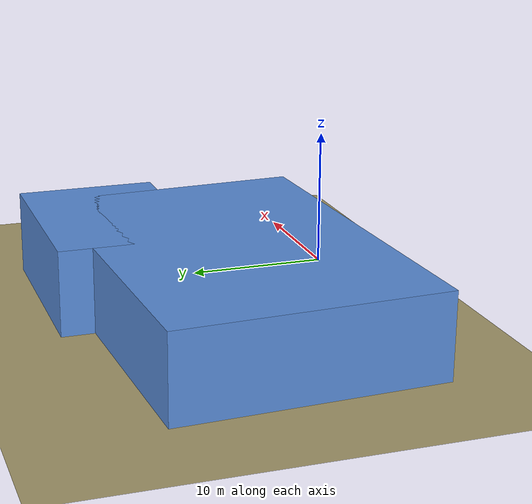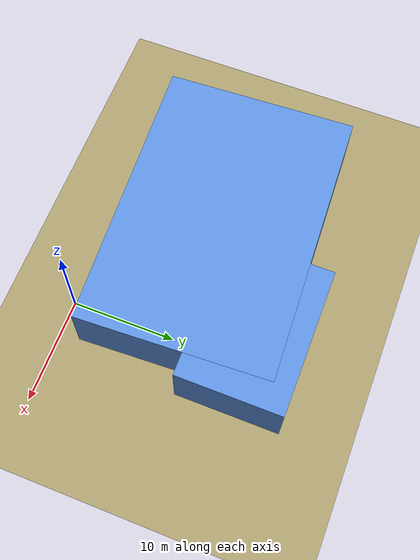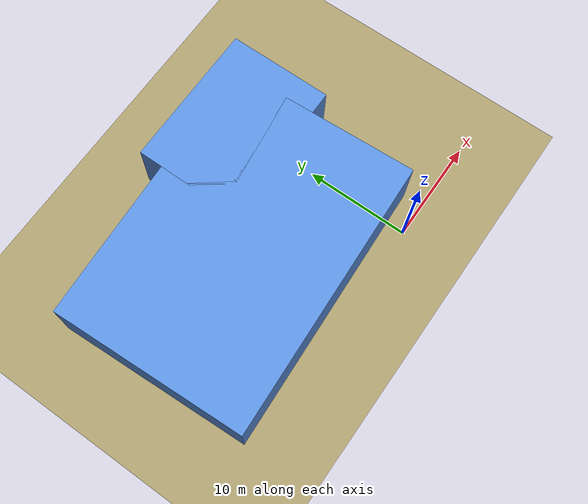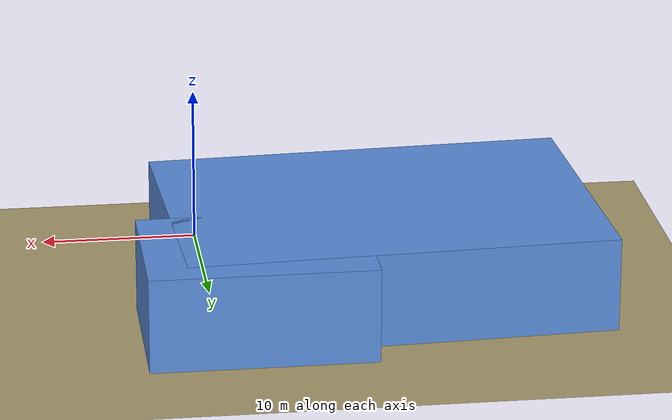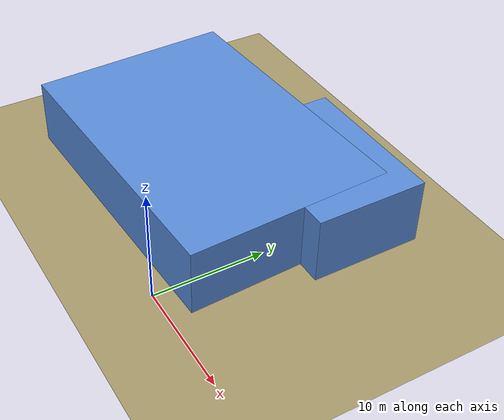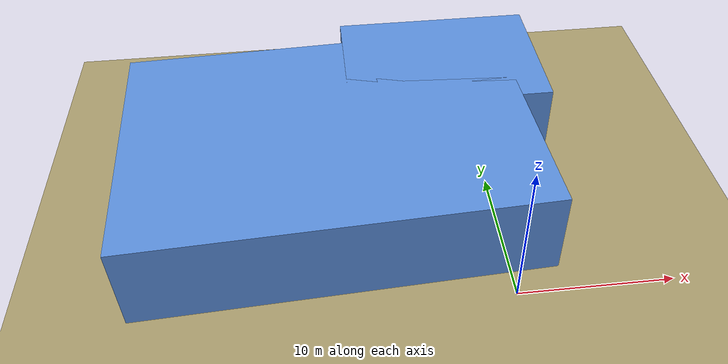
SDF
<sdf version="1.10">
 <world name="novation_city">
  <model name="ground_plane">
   <static>true</static>
   <link name="link">
    <collision name="collision">
     <geometry><plane><normal>0 0 1</normal><size>2000 2000</size></plane></geometry>
     <surface><friction><ode><mu>1.0</mu><mu2>1.0</mu2></ode></friction></surface>
    </collision>
    <visual name="visual">
     <geometry><plane><normal>0 0 1</normal><size>2000 2000</size></plane></geometry>
     <material><ambient>0.55 0.50 0.35 1</ambient><diffuse>0.65 0.60 0.42 1</diffuse></material>
    </visual>
   </link>
  </model>
  <model name="top_cam">
   <static>true</static>
   <pose>-30 40 220   0 1.5707 0</pose>
   <link name="link">
    <sensor name="top_camera" type="camera">
     <always_on>1</always_on>
     <update_rate>2</update_rate>
     <topic>world_cam/top</topic>
     <gz_frame_id>world</gz_frame_id>
     <camera>
      <horizontal_fov>1.30</horizontal_fov>
      <image><width>1024</width><height>1024</height><format>R8G8B8</format></image>
      <clip><near>0.1</near><far>2000.0</far></clip>
     </camera>
    </sensor>
   </link>
  </model>
  <model name="bld_Enova_Robotics_1070">
   <static>true</static>
   <pose>-10.710 10.436 3.000 0 0 -3.0950</pose>
   <link name="link">
    <collision name="c"><geometry><box><size>26.78 18.44 6.00</size></box></geometry></collision>
    <visual name="v">
     <geometry><box><size>26.78 18.44 6.00</size></box></geometry>
     <material><ambient>0.35 0.55 0.85 1</ambient><diffuse>0.35 0.55 0.85 1</diffuse></material>
    </visual>
   </link>
  </model>
  <model name="bld_Sagemcom_Software___Technologies_223">
   <static>true</static>
   <pose>-2.239 17.065 3.000 0 0 0.0000</pose>
   <link name="link">
    <collision name="c"><geometry><box><size>14.00 10.00 6.00</size></box></geometry></collision>
    <visual name="v">
     <geometry><box><size>14.00 10.00 6.00</size></box></geometry>
     <material><ambient>0.35 0.55 0.85 1</ambient><diffuse>0.35 0.55 0.85 1</diffuse></material>
    </visual>
   </link>
  </model>
 </world>
</sdf>
